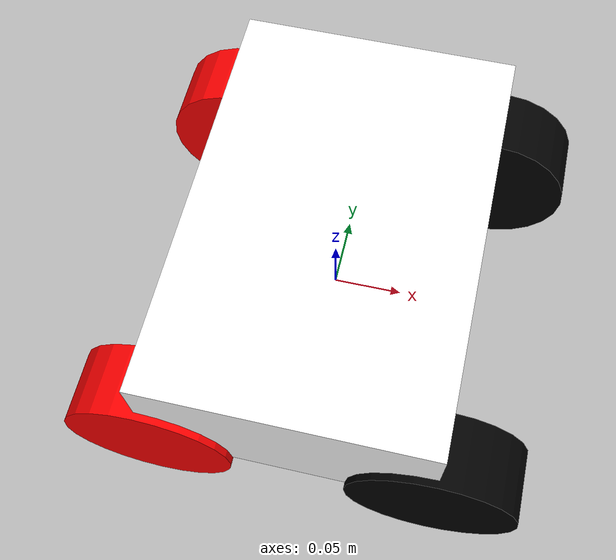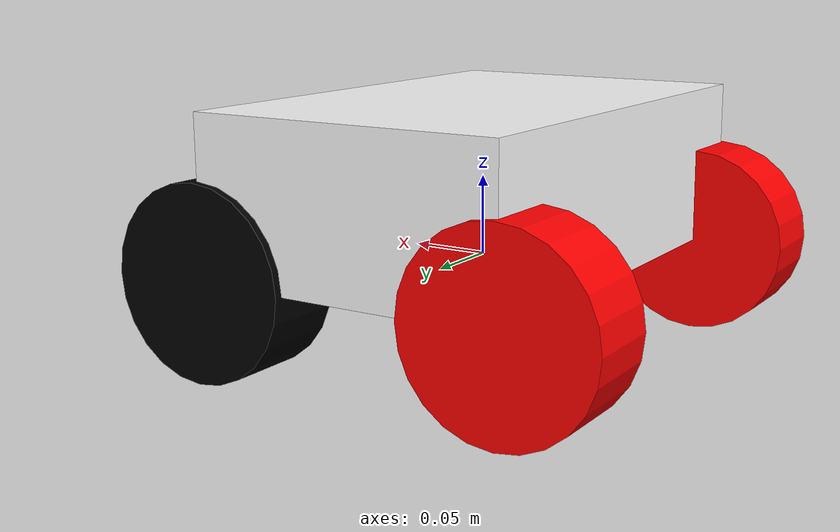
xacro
<robot name="sentry_base" xmlns:xacro="http://www.ros.org/wiki/xacro">
    <!-- Defining the colors used in this robot  -->
    <material name="Black">
        <color rgba="0 0 0 1" />
    </material>

    <material name="White">
        <color rgba="1 1 1 1" />
    </material>

    <material name="Blue">
        <color rgba="0 0 1 1" />
    </material>

    <material name="Red">
        <color rgba="1 0 0 1" />
    </material>

    <material name="Brown">
        <color rgba="0.647 0.165 0.165 1" />
    </material>

    <xacro:property name="PI" value="3.1415926"/>
	<xacro:property name="length_wheel" value="0.05" />
	<xacro:property name="radius_wheel" value="0.06" />

    <!-- Inertial matrix  -->
    <xacro:macro name="inertial_matrix" params="mass">
        <inertial>
            <mass value="${mass}" />
            <origin xyz="0 0 0" rpy="0 0 0" />
            <inertia ixx="0.01" ixy="0.0" ixz="0.0" iyy="0.01" iyz="0.0" izz="0.01" />
        </inertial>
    </xacro:macro>

    <xacro:macro name="Box_inertial_matrix" params="m l w h">
       <inertial>
               <mass value="${m}" />
               <inertia ixx="${m*(h*h + l*l)/12}" ixy = "0" ixz = "0"
                   iyy="${m*(w*w + l*l)/12}" iyz= "0"
                   izz="${m*(w*w + h*h)/12}" />
       </inertial>
    </xacro:macro>

    <!-- Defining the inertial matrix used for cylinder -->
    <xacro:macro name="cylinder_inertial_matrix" params="m r h">
        <inertial>
            <mass value="${m}" />
            <inertia ixx="${m*(3*r*r+h*h)/12}" ixy = "0" ixz = "0"
                iyy="${m*(3*r*r+h*h)/12}" iyz = "0"
                izz="${m*r*r/2}" />
        </inertial>
    </xacro:macro>

    <xacro:macro name="gazebo_material" params="ref color">
        <gazebo reference="${ref}">
            <pose>0 0 0 0 0 0</pose>
            <material>Gazebo/${color}</material>
        </gazebo>
    </xacro:macro>

    <!-- //////////////////////////////// all base links of sentry ////////////////////////////////// -->
    <link name="dummy" />

    <link name="base_link">
        <visual>
            <origin xyz="0 0 0.05" rpy="0 0 0"/>
            <geometry>
                <box size="0.2 0.3 0.1"/>
            </geometry>
            <material name="White" />
        </visual>
        <collision>
            <origin xyz="0 0 0.05" rpy="0 0 0"/>
            <geometry>
                <box size="0.2 0.3 0.1"/>
            </geometry>
        </collision>
        <xacro:Box_inertial_matrix m="25" l="0.2" w="0.3" h="0.1"/>
    </link>

    <link name="left_front_wheel">
        <visual>
            <origin xyz="0 0 0" rpy="0 0 0" />
            <geometry>
                <cylinder radius="${radius_wheel}" length="${length_wheel}" />
            </geometry>
            <material name="Black" />
        </visual>
        <collision>
            <origin xyz="0 0 0" rpy="0 0 0" />
            <geometry>
                <cylinder radius="${radius_wheel}" length="${length_wheel}" />
            </geometry>
        </collision>
        <xacro:cylinder_inertial_matrix m="0.5" r="${radius_wheel}" h="${length_wheel}"/>
    </link>

    <link name="right_front_wheel">
        <visual>
            <origin xyz="0 0 0" rpy="0 0 0" />
            <geometry>
                <cylinder radius="${radius_wheel}" length="${length_wheel}" />
            </geometry>
            <material name="Black" />
        </visual>
        <collision>
            <origin xyz="0 0 0" rpy="0 0 0" />
            <geometry>
                <cylinder radius="${radius_wheel}" length="${length_wheel}" />
            </geometry>
        </collision>
        <xacro:cylinder_inertial_matrix m="0.5" r="${radius_wheel}" h="${length_wheel}"/>
    </link>

    <link name="left_rear_wheel">
        <visual>
            <origin xyz="0 0 0" rpy="0 0 0" />
            <geometry>
                <cylinder radius="${radius_wheel}" length="${length_wheel}" />
            </geometry>
            <material name="Red" />
        </visual>
        <collision>
            <origin xyz="0 0 0" rpy="0 0 0" />
            <geometry>
                <cylinder radius="${radius_wheel}" length="${length_wheel}" />
            </geometry>
        </collision>
        <xacro:cylinder_inertial_matrix m="0.5" r="${radius_wheel}" h="${length_wheel}"/>
    </link>

    <link name="right_rear_wheel">
        <visual>
            <origin xyz="0 0 0" rpy="0 0 0" />
            <geometry>
                <cylinder radius="${radius_wheel}" length="${length_wheel}" />
            </geometry>
            <material name="Red" />
        </visual>
        <collision>
            <origin xyz="0 0 0" rpy="0 0 0" />
            <geometry>
                <cylinder radius="${radius_wheel}" length="${length_wheel}" />
            </geometry>
        </collision>
        <xacro:cylinder_inertial_matrix m="0.5" r="${radius_wheel}" h="${length_wheel}"/>
    </link>

    <!-- //////////////////////////////// all joints ////////////////////////////////// -->
    <joint name="dummy_joint" type="fixed">
        <parent link="dummy" />
        <child link="base_link" />
    </joint>

    <joint name="base_to_wheel1" type="continuous">
        <axis xyz="0 0 1" />
        <anchor xyz="0 0 0" />
        <limit effort="100" velocity="100" />
        <parent link="base_link"/>
        <child link="left_front_wheel"/>
        <origin rpy="${-PI/2} 0 0" xyz="0.1 0.13 0"/>
    </joint>

    <joint name="base_to_wheel2" type="continuous">
        <axis xyz="0 0 1" />
        <anchor xyz="0 0 0" />
        <limit effort="100" velocity="100" />
        <parent link="base_link"/>
        <child link="left_rear_wheel"/>
        <origin rpy="${-PI/2} 0 0" xyz="-0.1 0.13 0"/>
    </joint>

    <joint name="base_to_wheel3" type="continuous">
        <axis xyz="0 0 1" />
        <anchor xyz="0 0 0" />
        <limit effort="100" velocity="100" />
        <parent link="base_link"/>
        <child link="right_front_wheel"/>
        <origin rpy="${-PI/2} 0 0" xyz="0.1 -0.13 0"/>
    </joint>

    <joint name="base_to_wheel4" type="continuous">
        <axis xyz="0 0 1" />
        <anchor xyz="0 0 0" />
        <limit effort="100" velocity="100" />
        <parent link="base_link"/>
        <child link="right_rear_wheel"/>
        <origin rpy="${-PI/2} 0 0" xyz="-0.1 -0.13 0"/>
    </joint>

    <!-- //////////////////////////////// gazebo ////////////////////////////////// -->
    <xacro:gazebo_material ref="base_link"         color="Orange" />
    <xacro:gazebo_material ref="left_front_wheel"  color="Black" />
    <xacro:gazebo_material ref="right_front_wheel" color="Black" />
    <xacro:gazebo_material ref="left_rear_wheel"   color="Red" />
    <xacro:gazebo_material ref="right_rear_wheel"  color="Red" />

    <!-- //// ////////////////////////////// driver controller //////////////////////////////////  -->
    <gazebo>
        <plugin name="mecanum_controller" filename="libgazebo_ros_planar_move.so">
            <always_on>true</always_on>
            <updateRate>100.0</updateRate>
            <robotNamespace>/</robotNamespace>
            <commandTopic>cmd_vel</commandTopic>
            <odometryTopic>odom</odometryTopic>
            <odometryFrame>odom</odometryFrame>
            <leftFrontJoint>base_to_wheel1</leftFrontJoint>
            <rightFrontJoint>base_to_wheel3</rightFrontJoint>
            <leftRearJoint>base_to_wheel2</leftRearJoint>
            <rightRearJoint>base_to_wheel4</rightRearJoint>
            <wheelSeparation>0.26</wheelSeparation>
            <wheelDiameter>0.12</wheelDiameter>
            <odometryRate>20.0</odometryRate>
            <torque>2</torque>
            <robotBaseFrame>base_footprint</robotBaseFrame>
            <publishOdomTF>false</publishOdomTF>
            <broadcastTF>false</broadcastTF>
            <cmdTimeout>1.0</cmdTimeout>
        </plugin>
    </gazebo>

</robot>
